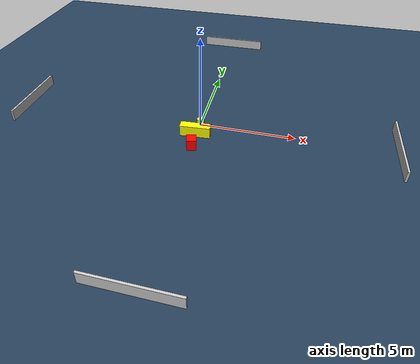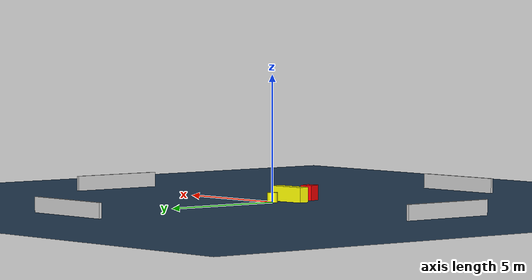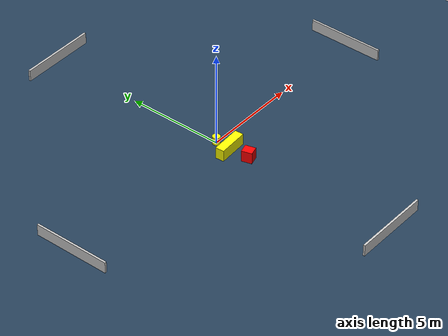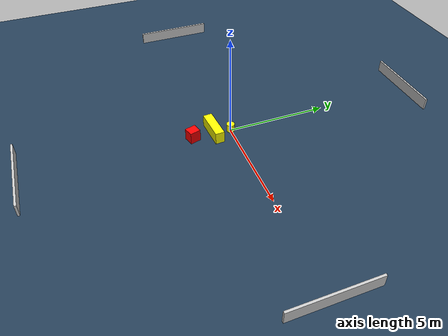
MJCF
<?xml version="1.0" ?>
<mujoco model="generated_environment">
  <option timestep="0.01" integrator="RK4" cone="elliptic"/>
  <default>
    <geom density="1"/>
  </default>
  <asset>
    <texture builtin="gradient" height="3072" name="skybox" rgb1="0.3 0.5 0.7" rgb2="0 0 0" type="skybox" width="512"/>
    <texture builtin="checker" height="300" name="groundplane" rgb1="0.2 0.3 0.4" rgb2="0.1 0.2 0.3" type="2d" width="300"/>
    <material name="groundplane" reflectance="0.2" texrepeat="5 5" texture="groundplane"/>
  </asset>
  <worldbody>
    <light dir="0 0 -1" directional="true" pos="0 0 1.5"/>
    <geom condim="3" friction="0.5 0.005 0.001" material="groundplane" name="floor" pos="0 0 0" size="0 0 0.05" type="plane"/>
    <body name="walls">
      <geom name="wall_1" condim="4" pos="-10.0 0.0 0.3" rgba="0.800000011920929 0.800000011920929 0.800000011920929 1.0" size="0.05 2.0 0.3" type="box"/>
      <geom name="wall_2" condim="4" pos="10.0 0.0 0.3" rgba="0.800000011920929 0.800000011920929 0.800000011920929 1.0" size="0.05 2.0 0.3" type="box"/>
      <geom name="wall_3" condim="4" pos="0.0 -10.0 0.3" rgba="0.800000011920929 0.800000011920929 0.800000011920929 1.0" size="2.0 0.05 0.3" type="box"/>
      <geom name="wall_4" condim="4" pos="0.0 10.0 0.3" rgba="0.800000011920929 0.800000011920929 0.800000011920929 1.0" size="2.0 0.05 0.3" type="box"/>
    </body>
    <body name="robot">
      <joint name="joint_x" type="slide" pos="0 0 0" axis="1 0 0"/>
      <joint name="joint_y" type="slide" pos="0 0 0" axis="0 1 0"/>
      <geom name="robot" type="cylinder" pos="0.0 0.0 0.2" size="0.2 0.2 0.0" mass="5.0" friction="1.0 0.005 0.0001" condim="4" rgba="1.0 1.0 0.0 1.0"/>
    </body>
    <body name="obstacle_1_movable">
      <geom name="obstacle_1_movable" condim="4" pos="-0.07527674699826961 -0.8493902499562433 0.3" euler="0 0 183.60914850805352" friction="0.0 0.005 0.001" rgba="1.0 1.0 0.0 1.0" size="0.7838842538701976 0.22494554388598229 0.3" type="box" mass="0.1"/>
      <joint type="free"/>
    </body>
    <body name="obstacle_2_static">
      <geom name="obstacle_2_static" condim="4" pos="-0.002809967538150259 -1.926504190819916 0.3" euler="0 0 195.78332313735194" friction="0.0 0.005 0.001" rgba="1.0 0.0 0.0 1.0" size="0.24170360733362978 0.2682293710146876 0.3" type="box"/>
    </body>
  </worldbody>
  <actuator>
    <motor name="actuator_x" joint="joint_x" gear="1" ctrlrange="-1 1"/>
    <motor name="actuator_y" joint="joint_y" gear="1" ctrlrange="-1 1"/>
  </actuator>
</mujoco>
